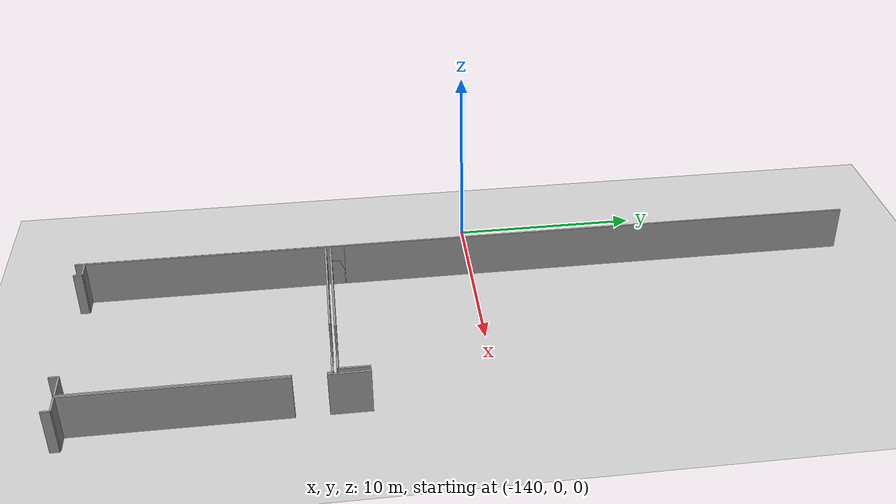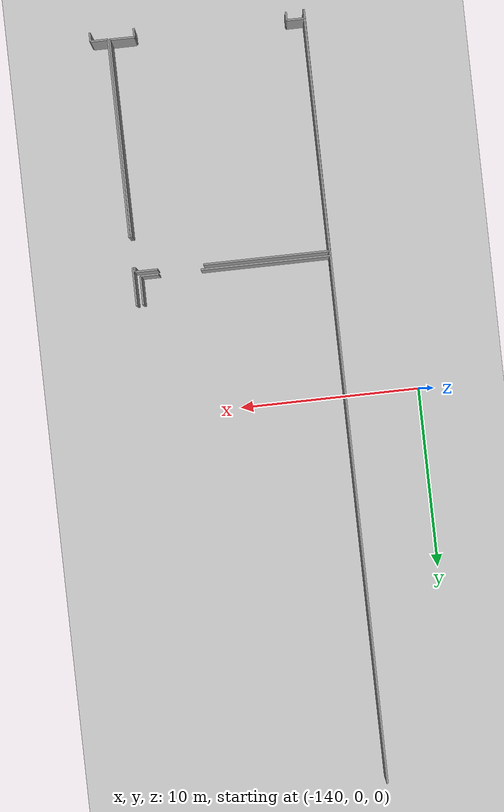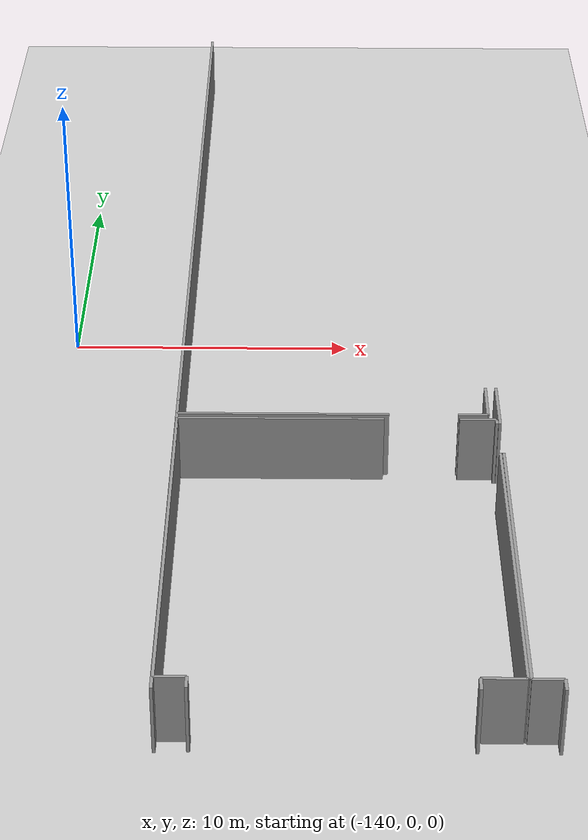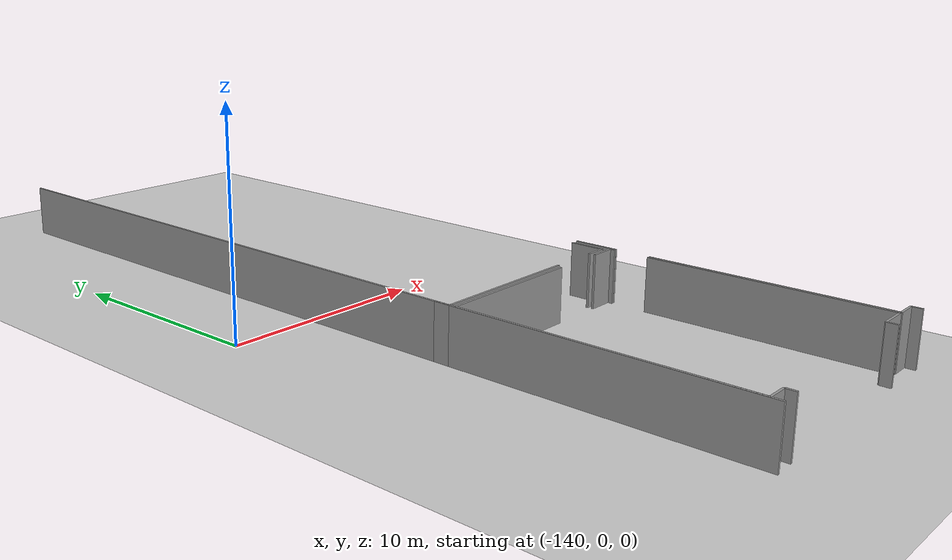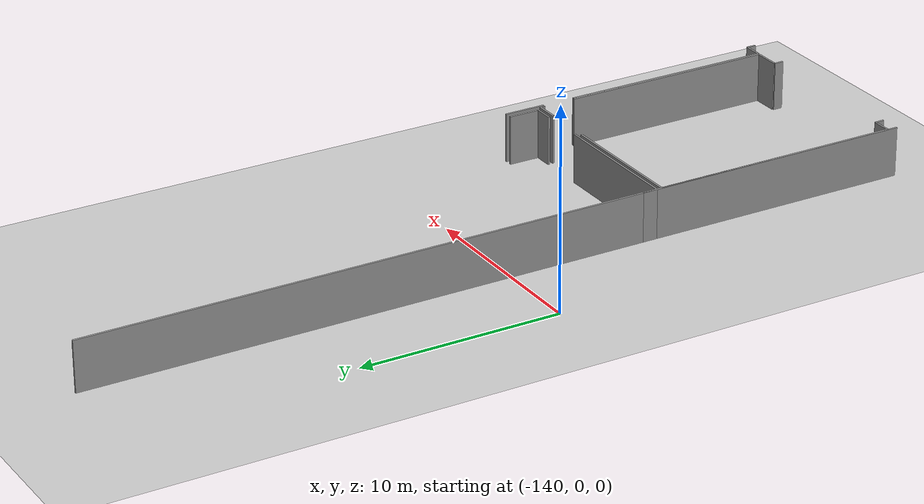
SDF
<sdf version="1.6">
 <world name="default">
  <model name="ground_plane">
   <static>1</static>
   <link name="link">
    <collision name="collision">
     <geometry><plane><normal>0 0 1</normal><size>100 100</size></plane></geometry>
     <surface><friction><ode><mu>100</mu><mu2>50</mu2></ode></friction></surface>
    </collision>
    <visual name="visual">
     <cast_shadows>0</cast_shadows>
     <geometry><plane><normal>0 0 1</normal><size>100 100</size></plane></geometry>
     <material>
      <script><uri>file://media/materials/scripts/gazebo.material</uri><name>Gazebo/Grey</name></script>
     </material>
    </visual>
   </link>
  </model>
  <model name="50037764_PLAN2">
   <static>1</static>
   <link name="Wall_28">
    <collision name="Wall_28_Collision">
     <geometry><box><size>0.471808429508 0.1 2.5</size></box></geometry>
     <pose>0.235904214754 0 1.25 0 0 0</pose>
    </collision>
    <visual name="Wall_28_Visual">
     <pose>0.235904214754 0 1.25 0 0 0</pose>
     <geometry><box><size>0.471808429508 0.1 2.5</size></box></geometry>
     <material>
      <script><uri>file://media/materials/scripts/gazebo.material</uri><name>Gazebo/Grey</name></script>
      <ambient>1 1 1 1</ambient>
     </material>
    </visual>
    <pose>11.7992272103 -42.6231633535 0 0 0 1.57079632679</pose>
   </link>
   <link name="Wall_29">
    <collision name="Wall_29_Collision">
     <geometry><box><size>0.963953429254 0.1 2.5</size></box></geometry>
     <pose>0.481976714627 0 1.25 0 0 0</pose>
    </collision>
    <visual name="Wall_29_Visual">
     <pose>0.481976714627 0 1.25 0 0 0</pose>
     <geometry><box><size>0.963953429254 0.1 2.5</size></box></geometry>
     <material>
      <script><uri>file://media/materials/scripts/gazebo.material</uri><name>Gazebo/Grey</name></script>
      <ambient>1 1 1 1</ambient>
     </material>
    </visual>
    <pose>11.7992272103 -42.151354924 0 0 0 3.14159265359</pose>
   </link>
   <link name="Wall_30">
    <collision name="Wall_30_Collision">
     <geometry><box><size>10.885911841 0.1 2.5</size></box></geometry>
     <pose>5.44295592048 0 1.25 0 0 0</pose>
    </collision>
    <visual name="Wall_30_Visual">
     <pose>5.44295592048 0 1.25 0 0 0</pose>
     <geometry><box><size>10.885911841 0.1 2.5</size></box></geometry>
     <material>
      <script><uri>file://media/materials/scripts/gazebo.material</uri><name>Gazebo/Grey</name></script>
      <ambient>1 1 1 1</ambient>
     </material>
    </visual>
    <pose>10.8352737811 -42.151354924 0 0 0 1.57079632679</pose>
   </link>
   <link name="Wall_31">
    <collision name="Wall_31_Collision">
     <geometry><box><size>2.10127611978 0.1 2.5</size></box></geometry>
     <pose>1.05063805989 0 1.25 0 0 0</pose>
    </collision>
    <visual name="Wall_31_Visual">
     <pose>1.05063805989 0 1.25 0 0 0</pose>
     <geometry><box><size>2.10127611978 0.1 2.5</size></box></geometry>
     <material>
      <script><uri>file://media/materials/scripts/gazebo.material</uri><name>Gazebo/Grey</name></script>
      <ambient>1 1 1 1</ambient>
     </material>
    </visual>
    <pose>10.8352737811 -29.594793838 0 0 0 1.57079632679</pose>
   </link>
   <link name="Wall_36">
    <collision name="Wall_36_Collision">
     <geometry><box><size>0.999466165031 0.1 2.5</size></box></geometry>
     <pose>0.499733082516 0 1.25 0 0 0</pose>
    </collision>
    <visual name="Wall_36_Visual">
     <pose>0.499733082516 0 1.25 0 0 0</pose>
     <geometry><box><size>0.999466165031 0.1 2.5</size></box></geometry>
     <material>
      <script><uri>file://media/materials/scripts/gazebo.material</uri><name>Gazebo/Grey</name></script>
      <ambient>1 1 1 1</ambient>
     </material>
    </visual>
    <pose>10.4633941736 -29.0840917179 0 0 0 3.14159265359</pose>
   </link>
   <link name="Wall_37">
    <collision name="Wall_37_Collision">
     <geometry><box><size>7.14080532818 0.1 2.5</size></box></geometry>
     <pose>3.57040266409 0 1.25 0 0 0</pose>
    </collision>
    <visual name="Wall_37_Visual">
     <pose>3.57040266409 0 1.25 0 0 0</pose>
     <geometry><box><size>7.14080532818 0.1 2.5</size></box></geometry>
     <material>
      <script><uri>file://media/materials/scripts/gazebo.material</uri><name>Gazebo/Grey</name></script>
      <ambient>1 1 1 1</ambient>
     </material>
    </visual>
    <pose>7.14080532818 -29.0840917179 0 0 0 3.14159265359</pose>
   </link>
   <link name="Wall_38">
    <collision name="Wall_38_Collision">
     <geometry><box><size>0.748385784737 0.1 2.5</size></box></geometry>
     <pose>0.374192892369 0 1.25 0 0 0</pose>
    </collision>
    <visual name="Wall_38_Visual">
     <pose>0.374192892369 0 1.25 0 0 0</pose>
     <geometry><box><size>0.748385784737 0.1 2.5</size></box></geometry>
     <material>
      <script><uri>file://media/materials/scripts/gazebo.material</uri><name>Gazebo/Grey</name></script>
      <ambient>1 1 1 1</ambient>
     </material>
    </visual>
    <pose>0.0 -29.0840917179 0 0 0 1.57079632679</pose>
   </link>
   <link name="Wall_43">
    <collision name="Wall_43_Collision">
     <geometry><box><size>1.58249650918 0.1 2.5</size></box></geometry>
     <pose>0.791248254592 0 1.25 0 0 0</pose>
    </collision>
    <visual name="Wall_43_Visual">
     <pose>0.791248254592 0 1.25 0 0 0</pose>
     <geometry><box><size>1.58249650918 0.1 2.5</size></box></geometry>
     <material>
      <script><uri>file://media/materials/scripts/gazebo.material</uri><name>Gazebo/Grey</name></script>
      <ambient>1 1 1 1</ambient>
     </material>
    </visual>
    <pose>10.4768417306 -27.5016523463 0 0 0 -1.57929411421</pose>
   </link>
   <link name="Wall_44">
    <collision name="Wall_44_Collision">
     <geometry><box><size>1.36285525446 0.1 2.5</size></box></geometry>
     <pose>0.681427627231 0 1.25 0 0 0</pose>
    </collision>
    <visual name="Wall_44_Visual">
     <pose>0.681427627231 0 1.25 0 0 0</pose>
     <geometry><box><size>1.36285525446 0.1 2.5</size></box></geometry>
     <material>
      <script><uri>file://media/materials/scripts/gazebo.material</uri><name>Gazebo/Grey</name></script>
      <ambient>1 1 1 1</ambient>
     </material>
    </visual>
    <pose>10.7438608979 -42.1345772535 0 0 0 3.14159265359</pose>
   </link>
   <link name="Wall_45">
    <collision name="Wall_45_Collision">
     <geometry><box><size>0.481976714627 0.1 2.5</size></box></geometry>
     <pose>0.240988357314 0 1.25 0 0 0</pose>
    </collision>
    <visual name="Wall_45_Visual">
     <pose>0.240988357314 0 1.25 0 0 0</pose>
     <geometry><box><size>0.481976714627 0.1 2.5</size></box></geometry>
     <material>
      <script><uri>file://media/materials/scripts/gazebo.material</uri><name>Gazebo/Grey</name></script>
      <ambient>1 1 1 1</ambient>
     </material>
    </visual>
    <pose>9.3810056434 -42.1345772535 0 0 0 -1.57079632679</pose>
   </link>
   <link name="Wall_46">
    <collision name="Wall_46_Collision">
     <geometry><box><size>0.465199044181 0.1 2.5</size></box></geometry>
     <pose>0.232599522091 0 1.25 0 0 0</pose>
    </collision>
    <visual name="Wall_46_Visual">
     <pose>0.232599522091 0 1.25 0 0 0</pose>
     <geometry><box><size>0.465199044181 0.1 2.5</size></box></geometry>
     <material>
      <script><uri>file://media/materials/scripts/gazebo.material</uri><name>Gazebo/Grey</name></script>
      <ambient>1 1 1 1</ambient>
     </material>
    </visual>
    <pose>0.996136051655 -42.6165539682 0 0 0 1.57079632679</pose>
   </link>
   <link name="Wall_47">
    <collision name="Wall_47_Collision">
     <geometry><box><size>0.980603996136 0.1 2.5</size></box></geometry>
     <pose>0.490301998068 0 1.25 0 0 0</pose>
    </collision>
    <visual name="Wall_47_Visual">
     <pose>0.490301998068 0 1.25 0 0 0</pose>
     <geometry><box><size>0.980603996136 0.1 2.5</size></box></geometry>
     <material>
      <script><uri>file://media/materials/scripts/gazebo.material</uri><name>Gazebo/Grey</name></script>
      <ambient>1 1 1 1</ambient>
     </material>
    </visual>
    <pose>0.996136051655 -42.151354924 0 0 0 3.14159265359</pose>
   </link>
   <link name="Wall_48">
    <collision name="Wall_48_Collision">
     <geometry><box><size>12.8059382785 0.1 2.5</size></box></geometry>
     <pose>6.40296913925 0 1.25 0 0 0</pose>
    </collision>
    <visual name="Wall_48_Visual">
     <pose>6.40296913925 0 1.25 0 0 0</pose>
     <geometry><box><size>12.8059382785 0.1 2.5</size></box></geometry>
     <material>
      <script><uri>file://media/materials/scripts/gazebo.material</uri><name>Gazebo/Grey</name></script>
      <ambient>1 1 1 1</ambient>
     </material>
    </visual>
    <pose>0.0155320555188 -42.151354924 0 0 0 1.57079632679</pose>
   </link>
   <link name="Wall_49">
    <collision name="Wall_49_Collision">
     <geometry><box><size>6.95553917332 0.1 2.5</size></box></geometry>
     <pose>3.47776958666 0 1.25 0 0 0</pose>
    </collision>
    <visual name="Wall_49_Visual">
     <pose>3.47776958666 0 1.25 0 0 0</pose>
     <geometry><box><size>6.95553917332 0.1 2.5</size></box></geometry>
     <material>
      <script><uri>file://media/materials/scripts/gazebo.material</uri><name>Gazebo/Grey</name></script>
      <ambient>1 1 1 1</ambient>
     </material>
    </visual>
    <pose>0.0155320555188 -29.3454166455 0 0 0 0.0</pose>
   </link>
   <link name="Wall_50">
    <collision name="Wall_50_Collision">
     <geometry><box><size>1.23567542834 0.1 2.5</size></box></geometry>
     <pose>0.61783771417 0 1.25 0 0 0</pose>
    </collision>
    <visual name="Wall_50_Visual">
     <pose>0.61783771417 0 1.25 0 0 0</pose>
     <geometry><box><size>1.23567542834 0.1 2.5</size></box></geometry>
     <material>
      <script><uri>file://media/materials/scripts/gazebo.material</uri><name>Gazebo/Grey</name></script>
      <ambient>1 1 1 1</ambient>
     </material>
    </visual>
    <pose>9.49407697392 -29.3454166455 0 0 0 0.0</pose>
   </link>
   <link name="Wall_51">
    <collision name="Wall_51_Collision">
     <geometry><box><size>0.249122985409 0.1 2.5</size></box></geometry>
     <pose>0.124561492704 0 1.25 0 0 0</pose>
    </collision>
    <visual name="Wall_51_Visual">
     <pose>0.124561492704 0 1.25 0 0 0</pose>
     <geometry><box><size>0.249122985409 0.1 2.5</size></box></geometry>
     <material>
      <script><uri>file://media/materials/scripts/gazebo.material</uri><name>Gazebo/Grey</name></script>
      <ambient>1 1 1 1</ambient>
     </material>
    </visual>
    <pose>10.7297524023 -29.3454166455 0 0 0 -1.57079632679</pose>
   </link>
   <link name="Wall_52">
    <collision name="Wall_52_Collision">
     <geometry><box><size>10.8780405692 0.1 2.5</size></box></geometry>
     <pose>5.43902028458 0 1.25 0 0 0</pose>
    </collision>
    <visual name="Wall_52_Visual">
     <pose>5.43902028458 0 1.25 0 0 0</pose>
     <geometry><box><size>10.8780405692 0.1 2.5</size></box></geometry>
     <material>
      <script><uri>file://media/materials/scripts/gazebo.material</uri><name>Gazebo/Grey</name></script>
      <ambient>1 1 1 1</ambient>
     </material>
    </visual>
    <pose>10.7297524023 -31.2565458335 0 0 0 -1.56949935613</pose>
   </link>
   <link name="Wall_577">
    <collision name="Wall_577_Collision">
     <geometry><box><size>42.6569729015 0.1 2.5</size></box></geometry>
     <pose>21.3284864508 0 1.25 0 0 0</pose>
    </collision>
    <visual name="Wall_577_Visual">
     <pose>21.3284864508 0 1.25 0 0 0</pose>
     <geometry><box><size>42.6569729015 0.1 2.5</size></box></geometry>
     <material>
      <script><uri>file://media/materials/scripts/gazebo.material</uri><name>Gazebo/Grey</name></script>
      <ambient>1 1 1 1</ambient>
     </material>
    </visual>
    <pose>0.0 -42.6569729015 0 0 0 1.57079632679</pose>
   </link>
   <pose>-135.8 21.3069729015 0 0 0 0</pose>
  </model>
 </world>
</sdf>
